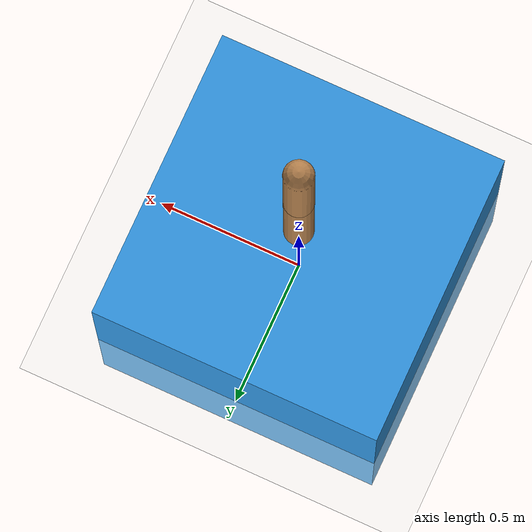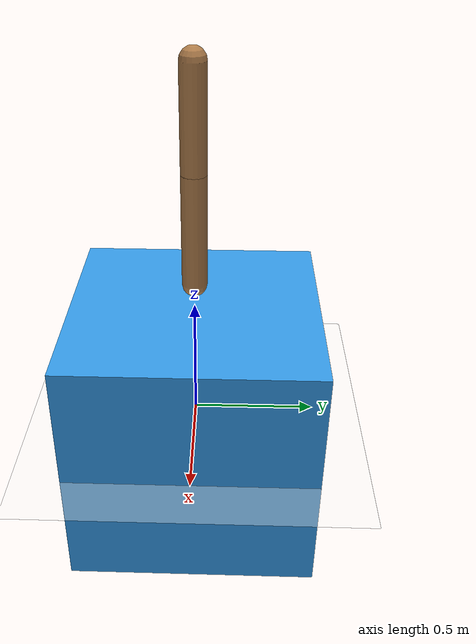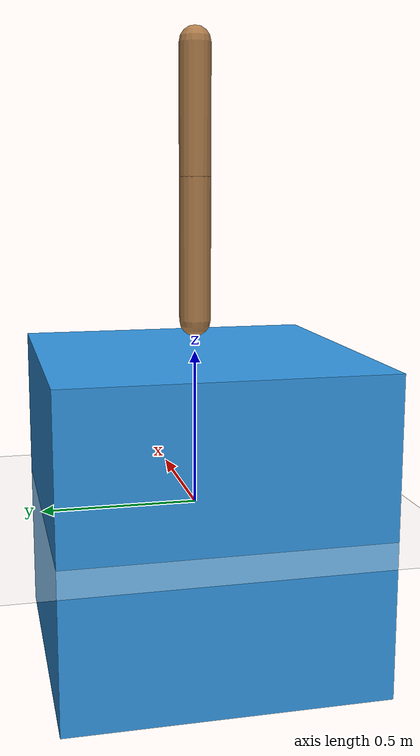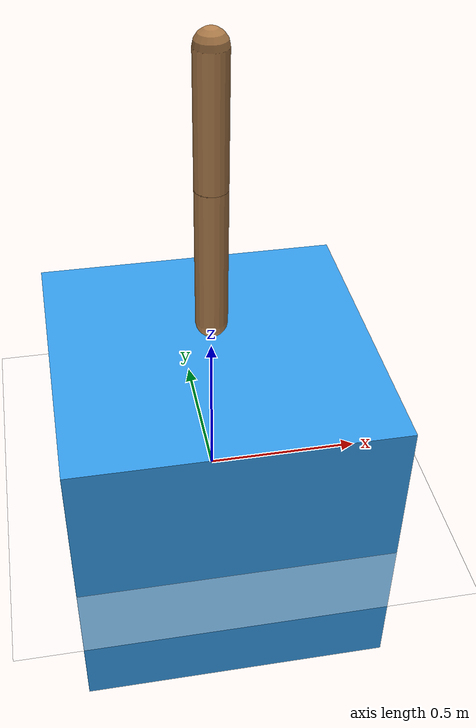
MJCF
<mujoco model="walker-box">
  <asset>
    <texture name="skybox" type="skybox" builtin="flat" rgb1="1 1 1" width="800" height="800" />
    <texture name="grid" type="2d" builtin="flat" rgb1="0.8 0.8 0.8" width="300" height="300" mark="edge"/>
    <material name="grid" texture="grid"/>
    <material name="self" rgba=".7 .5 .3 1"/>
  </asset>
  <visual>
    <headlight ambient=".4 .4 .4" diffuse=".8 .8 .8" specular="0.1 0.1 0.1"/>
    <map znear=".001"/>
    <quality shadowsize="16384"/>
  </visual>
  <compiler angle="degree" coordinate="global" inertiafromgeom="true"/>
  <default>
    <joint armature="1" damping="1" limited="true"/>
    <geom conaffinity="0" condim="3" margin="0.001" solimp=".8 .8 .01" solref=".02 1" rgba=".7 .5 .3 1"/>
    <motor ctrllimited="true" ctrlrange="-.4 .4"/>
  </default>
  <option integrator="RK4" timestep="0.002"/>
  <worldbody>
    <light cutoff="100" diffuse="1 1 1" dir="0 -0.3 -1.3" directional="true" exponent="1" pos="0 30 130" specular=".1 .1 .1"/>
    <geom conaffinity="1" condim="3" name="floor" pos="0 0 0" rgba="1 1 1 1" size="200 200 .125" type="plane" material="grid"/>
    <body name="0" pos="0 0 1.25">
      <camera name="track" mode="trackcom" pos="0 -10 5" quat="0.831 0.556 0 0"/>
      <joint armature="0" axis="1 0 0" damping="0" limited="false" name="rootx" pos="0 0 0" stiffness="0" type="slide"/>
      <joint armature="0" axis="0 0 1" damping="0" limited="false" name="rootz" pos="0 0 0" ref="1.25" stiffness="0" type="slide"/>
      <joint armature="0" axis="0 1 0" damping="0" limited="false" name="0_joint" pos="0 0 1.25" stiffness="0" type="hinge"/>
      <geom friction="0.9" fromto="-0 0 1.45 0 0 1.05" size="0.05" type="capsule"/>
      <body name="1" pos="0 0 1.05">
        <joint axis="0 -1 0" name="1_joint" pos="0 0 1.05" range="-180 180" type="hinge"/>
        <geom friction="2.0" fromto="0 0 1.05 0 0 0.6" size="0.05" type="capsule"/>
      </body>
      <body name="2" pos="0 0 1.05">
        <joint axis="0 -1 0" name="2_joint" pos="0 0 1.05" range="-180 180" type="hinge"/>
        <geom friction="2.0" fromto="0 0 1.05 0 0 0.6" size="0.05" type="capsule"/>
      </body>
    </body>
    <body name="box" pos="0.3 0 0.5">
      <joint name="boxx" type="slide" axis="1 0 0" limited="false"/>
      <joint name="boxz" type="slide" axis="0 0 1" limited="false"/>
      <joint name="box_yaw" type="hinge" axis="0 1 0" limited="false"/>
      <geom type="box" size="0.5 0.5 0.5" density="10" rgba="0.2 0.6 0.9 1.0" contype="1" conaffinity="1" friction="0.6 0.005 0.002"/>
    </body>
  </worldbody>
  <actuator>
    <motor ctrllimited="true" ctrlrange="-1.0 1.0" gear="200" joint="1_joint" name="1_joint"/>
    <motor ctrllimited="true" ctrlrange="-1.0 1.0" gear="200" joint="2_joint" name="2_joint"/>
  </actuator>
</mujoco>
